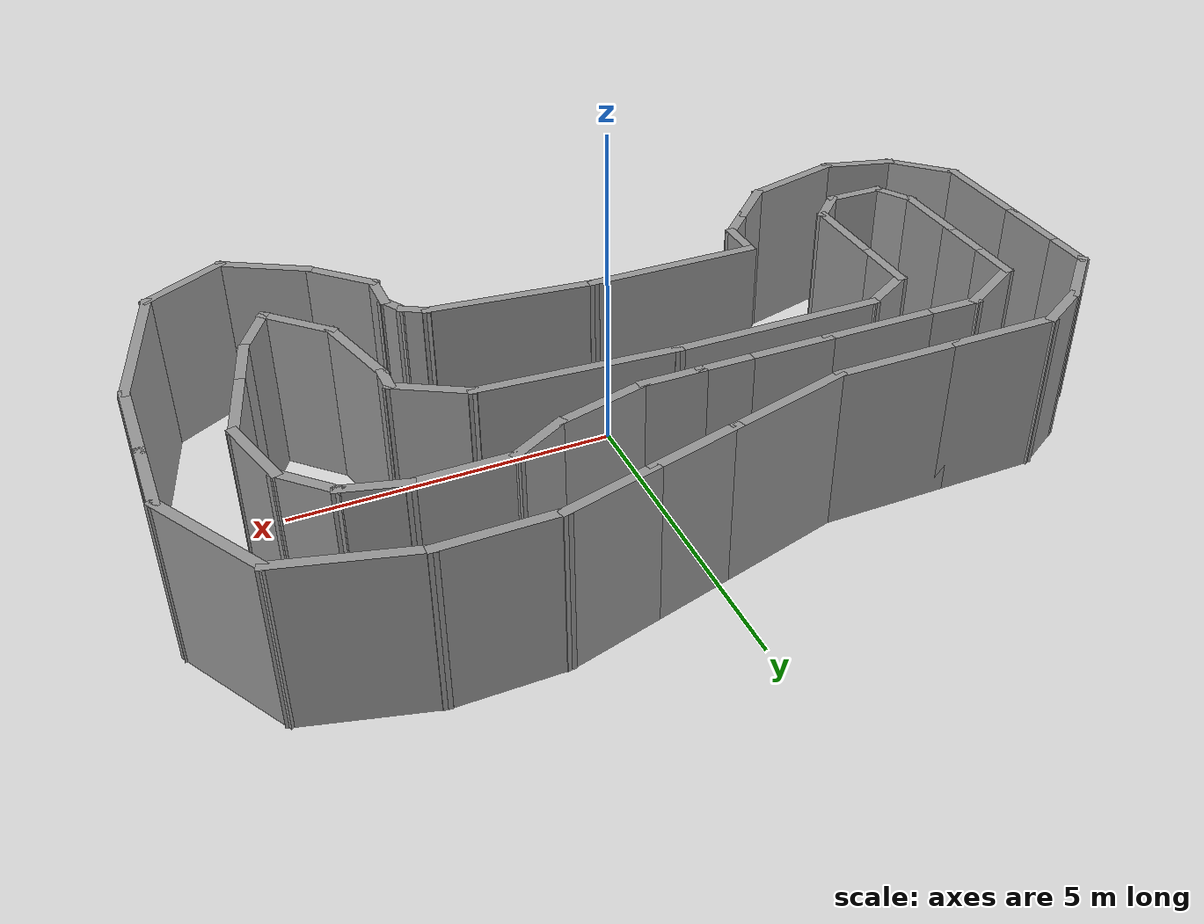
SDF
<?xml version='1.0'?>
<sdf version='1.7'>
  <model name='track1_f1'>
    <pose>-0.140454 0.494214 0 0 -0 0</pose>
    <link name='Wall_10'>
      <collision name='Wall_10_Collision'>
        <geometry>
          <box>
            <size>1.5 0.15 2.5</size>
          </box>
        </geometry>
        <pose>0 0 1.25 0 -0 0</pose>
      </collision>
      <visual name='Wall_10_Visual'>
        <pose>0 0 1.25 0 -0 0</pose>
        <geometry>
          <box>
            <size>1.5 0.15 2.5</size>
          </box>
        </geometry>
        <material>
          <script>
            <uri>file://media/materials/scripts/gazebo.material</uri>
            <name>Gazebo/Grey</name>
          </script>
          <ambient>1 1 1 1</ambient>
        </material>
        <meta>
          <layer>0</layer>
        </meta>
      </visual>
      <pose>-4.01844 -0.798864 0 0 -0 -1.5708</pose>
    </link>
    <link name='Wall_11'>
      <collision name='Wall_11_Collision'>
        <geometry>
          <box>
            <size>0.75 0.15 2.5</size>
          </box>
        </geometry>
        <pose>0 0 1.25 0 -0 0</pose>
      </collision>
      <visual name='Wall_11_Visual'>
        <pose>0 0 1.25 0 -0 0</pose>
        <geometry>
          <box>
            <size>0.75 0.15 2.5</size>
          </box>
        </geometry>
        <material>
          <script>
            <uri>file://media/materials/scripts/gazebo.material</uri>
            <name>Gazebo/Grey</name>
          </script>
          <ambient>1 1 1 1</ambient>
        </material>
        <meta>
          <layer>0</layer>
        </meta>
      </visual>
      <pose>-4.23057 -1.686 0 0 -0 -2.35619</pose>
    </link>
    <link name='Wall_12'>
      <collision name='Wall_12_Collision'>
        <geometry>
          <box>
            <size>1 0.15 2.5</size>
          </box>
        </geometry>
        <pose>0 0 1.25 0 -0 0</pose>
      </collision>
      <visual name='Wall_12_Visual'>
        <pose>0 0 1.25 0 -0 0</pose>
        <geometry>
          <box>
            <size>1 0.15 2.5</size>
          </box>
        </geometry>
        <material>
          <script>
            <uri>file://media/materials/scripts/gazebo.material</uri>
            <name>Gazebo/Grey</name>
          </script>
          <ambient>1 1 1 1</ambient>
        </material>
        <meta>
          <layer>0</layer>
        </meta>
      </visual>
      <pose>-4.86771 -1.89813 0 0 -0 3.14159</pose>
    </link>
    <link name='Wall_13'>
      <collision name='Wall_13_Collision'>
        <geometry>
          <box>
            <size>0.75 0.15 2.5</size>
          </box>
        </geometry>
        <pose>0 0 1.25 0 -0 0</pose>
      </collision>
      <visual name='Wall_13_Visual'>
        <pose>0 0 1.25 0 -0 0</pose>
        <geometry>
          <box>
            <size>0.75 0.15 2.5</size>
          </box>
        </geometry>
        <material>
          <script>
            <uri>file://media/materials/scripts/gazebo.material</uri>
            <name>Gazebo/Grey</name>
          </script>
          <ambient>1 1 1 1</ambient>
        </material>
        <meta>
          <layer>0</layer>
        </meta>
      </visual>
      <pose>-5.44271 -1.63832 0 0 -0 2.0944</pose>
    </link>
    <link name='Wall_14'>
      <collision name='Wall_14_Collision'>
        <geometry>
          <box>
            <size>1.25 0.15 2.5</size>
          </box>
        </geometry>
        <pose>0 0 1.25 0 -0 0</pose>
      </collision>
      <visual name='Wall_14_Visual'>
        <pose>0 0 1.25 0 -0 0</pose>
        <geometry>
          <box>
            <size>1.25 0.15 2.5</size>
          </box>
        </geometry>
        <material>
          <script>
            <uri>file://media/materials/scripts/gazebo.material</uri>
            <name>Gazebo/Grey</name>
          </script>
          <ambient>1 1 1 1</ambient>
        </material>
        <meta>
          <layer>0</layer>
        </meta>
      </visual>
      <pose>-5.59271 -0.828512 0 0 -0 1.5708</pose>
    </link>
    <link name='Wall_15'>
      <collision name='Wall_15_Collision'>
        <geometry>
          <box>
            <size>1 0.15 2.5</size>
          </box>
        </geometry>
        <pose>0 0 1.25 0 -0 0</pose>
      </collision>
      <visual name='Wall_15_Visual'>
        <pose>0 0 1.25 0 -0 0</pose>
        <geometry>
          <box>
            <size>1 0.15 2.5</size>
          </box>
        </geometry>
        <material>
          <script>
            <uri>file://media/materials/scripts/gazebo.material</uri>
            <name>Gazebo/Grey</name>
          </script>
          <ambient>1 1 1 1</ambient>
        </material>
        <meta>
          <layer>0</layer>
        </meta>
      </visual>
      <pose>-5.59271 0.146488 0 0 -0 1.5708</pose>
    </link>
    <link name='Wall_16'>
      <collision name='Wall_16_Collision'>
        <geometry>
          <box>
            <size>0.75 0.15 2.5</size>
          </box>
        </geometry>
        <pose>0 0 1.25 0 -0 0</pose>
      </collision>
      <visual name='Wall_16_Visual'>
        <pose>0 0 1.25 0 -0 0</pose>
        <geometry>
          <box>
            <size>0.75 0.15 2.5</size>
          </box>
        </geometry>
        <material>
          <script>
            <uri>file://media/materials/scripts/gazebo.material</uri>
            <name>Gazebo/Grey</name>
          </script>
          <ambient>1 1 1 1</ambient>
        </material>
        <meta>
          <layer>0</layer>
        </meta>
      </visual>
      <pose>-5.59271 0.871488 0 0 -0 1.5708</pose>
    </link>
    <link name='Wall_17'>
      <collision name='Wall_17_Collision'>
        <geometry>
          <box>
            <size>1.25 0.15 2.5</size>
          </box>
        </geometry>
        <pose>0 0 1.25 0 -0 0</pose>
      </collision>
      <visual name='Wall_17_Visual'>
        <pose>0 0 1.25 0 -0 0</pose>
        <geometry>
          <box>
            <size>1.25 0.15 2.5</size>
          </box>
        </geometry>
        <material>
          <script>
            <uri>file://media/materials/scripts/gazebo.material</uri>
            <name>Gazebo/Grey</name>
          </script>
          <ambient>1 1 1 1</ambient>
        </material>
        <meta>
          <layer>0</layer>
        </meta>
      </visual>
      <pose>-5.11639 1.44649 0 0 -0 0.523599</pose>
    </link>
    <link name='Wall_18'>
      <collision name='Wall_18_Collision'>
        <geometry>
          <box>
            <size>1 0.15 2.5</size>
          </box>
        </geometry>
        <pose>0 0 1.25 0 -0 0</pose>
      </collision>
      <visual name='Wall_18_Visual'>
        <pose>0 0 1.25 0 -0 0</pose>
        <geometry>
          <box>
            <size>1 0.15 2.5</size>
          </box>
        </geometry>
        <material>
          <script>
            <uri>file://media/materials/scripts/gazebo.material</uri>
            <name>Gazebo/Grey</name>
          </script>
          <ambient>1 1 1 1</ambient>
        </material>
        <meta>
          <layer>0</layer>
        </meta>
      </visual>
      <pose>-4.21508 1.72149 0 0 -0 0</pose>
    </link>
    <link name='Wall_19'>
      <collision name='Wall_19_Collision'>
        <geometry>
          <box>
            <size>1.75 0.15 2.5</size>
          </box>
        </geometry>
        <pose>0 0 1.25 0 -0 0</pose>
      </collision>
      <visual name='Wall_19_Visual'>
        <pose>0 0 1.25 0 -0 0</pose>
        <geometry>
          <box>
            <size>1.75 0.15 2.5</size>
          </box>
        </geometry>
        <material>
          <script>
            <uri>file://media/materials/scripts/gazebo.material</uri>
            <name>Gazebo/Grey</name>
          </script>
          <ambient>1 1 1 1</ambient>
        </material>
        <meta>
          <layer>0</layer>
        </meta>
      </visual>
      <pose>-2.99008 1.72149 0 0 -0 0</pose>
    </link>
    <link name='Wall_20'>
      <collision name='Wall_20_Collision'>
        <geometry>
          <box>
            <size>1.25 0.15 2.5</size>
          </box>
        </geometry>
        <pose>0 0 1.25 0 -0 0</pose>
      </collision>
      <visual name='Wall_20_Visual'>
        <pose>0 0 1.25 0 -0 0</pose>
        <geometry>
          <box>
            <size>1.25 0.15 2.5</size>
          </box>
        </geometry>
        <material>
          <script>
            <uri>file://media/materials/scripts/gazebo.material</uri>
            <name>Gazebo/Grey</name>
          </script>
          <ambient>1 1 1 1</ambient>
        </material>
        <meta>
          <layer>0</layer>
        </meta>
      </visual>
      <pose>-1.64008 1.72149 0 0 -0 0</pose>
    </link>
    <link name='Wall_21'>
      <collision name='Wall_21_Collision'>
        <geometry>
          <box>
            <size>1 0.15 2.5</size>
          </box>
        </geometry>
        <pose>0 0 1.25 0 -0 0</pose>
      </collision>
      <visual name='Wall_21_Visual'>
        <pose>0 0 1.25 0 -0 0</pose>
        <geometry>
          <box>
            <size>1 0.15 2.5</size>
          </box>
        </geometry>
        <material>
          <script>
            <uri>file://media/materials/scripts/gazebo.material</uri>
            <name>Gazebo/Grey</name>
          </script>
          <ambient>1 1 1 1</ambient>
        </material>
        <meta>
          <layer>0</layer>
        </meta>
      </visual>
      <pose>-0.665079 1.72149 0 0 -0 0</pose>
    </link>
    <link name='Wall_22'>
      <collision name='Wall_22_Collision'>
        <geometry>
          <box>
            <size>1 0.15 2.5</size>
          </box>
        </geometry>
        <pose>0 0 1.25 0 -0 0</pose>
      </collision>
      <visual name='Wall_22_Visual'>
        <pose>0 0 1.25 0 -0 0</pose>
        <geometry>
          <box>
            <size>1 0.15 2.5</size>
          </box>
        </geometry>
        <material>
          <script>
            <uri>file://media/materials/scripts/gazebo.material</uri>
            <name>Gazebo/Grey</name>
          </script>
          <ambient>1 1 1 1</ambient>
        </material>
        <meta>
          <layer>0</layer>
        </meta>
      </visual>
      <pose>0.184921 1.72149 0 0 -0 0</pose>
    </link>
    <link name='Wall_23'>
      <collision name='Wall_23_Collision'>
        <geometry>
          <box>
            <size>1.5 0.15 2.5</size>
          </box>
        </geometry>
        <pose>0 0 1.25 0 -0 0</pose>
      </collision>
      <visual name='Wall_23_Visual'>
        <pose>0 0 1.25 0 -0 0</pose>
        <geometry>
          <box>
            <size>1.5 0.15 2.5</size>
          </box>
        </geometry>
        <material>
          <script>
            <uri>file://media/materials/scripts/gazebo.material</uri>
            <name>Gazebo/Grey</name>
          </script>
          <ambient>1 1 1 1</ambient>
        </material>
        <meta>
          <layer>0</layer>
        </meta>
      </visual>
      <pose>1.26192 1.89619 0 0 -0 0.261799</pose>
    </link>
    <link name='Wall_24'>
      <collision name='Wall_24_Collision'>
        <geometry>
          <box>
            <size>1 0.15 2.5</size>
          </box>
        </geometry>
        <pose>0 0 1.25 0 -0 0</pose>
      </collision>
      <visual name='Wall_24_Visual'>
        <pose>0 0 1.25 0 -0 0</pose>
        <geometry>
          <box>
            <size>1 0.15 2.5</size>
          </box>
        </geometry>
        <material>
          <script>
            <uri>file://media/materials/scripts/gazebo.material</uri>
            <name>Gazebo/Grey</name>
          </script>
          <ambient>1 1 1 1</ambient>
        </material>
        <meta>
          <layer>0</layer>
        </meta>
      </visual>
      <pose>2.28198 2.28339 0 0 -0 0.523599</pose>
    </link>
    <link name='Wall_25'>
      <collision name='Wall_25_Collision'>
        <geometry>
          <box>
            <size>1.5 0.15 2.5</size>
          </box>
        </geometry>
        <pose>0 0 1.25 0 -0 0</pose>
      </collision>
      <visual name='Wall_25_Visual'>
        <pose>0 0 1.25 0 -0 0</pose>
        <geometry>
          <box>
            <size>1.5 0.15 2.5</size>
          </box>
        </geometry>
        <material>
          <script>
            <uri>file://media/materials/scripts/gazebo.material</uri>
            <name>Gazebo/Grey</name>
          </script>
          <ambient>1 1 1 1</ambient>
        </material>
        <meta>
          <layer>0</layer>
        </meta>
      </visual>
      <pose>3.32504 2.49589 0 0 -0 0</pose>
    </link>
    <link name='Wall_26'>
      <collision name='Wall_26_Collision'>
        <geometry>
          <box>
            <size>1 0.15 2.5</size>
          </box>
        </geometry>
        <pose>0 0 1.25 0 -0 0</pose>
      </collision>
      <visual name='Wall_26_Visual'>
        <pose>0 0 1.25 0 -0 0</pose>
        <geometry>
          <box>
            <size>1 0.15 2.5</size>
          </box>
        </geometry>
        <material>
          <script>
            <uri>file://media/materials/scripts/gazebo.material</uri>
            <name>Gazebo/Grey</name>
          </script>
          <ambient>1 1 1 1</ambient>
        </material>
        <meta>
          <layer>0</layer>
        </meta>
      </visual>
      <pose>4.41056 2.3859 0 0 -0 -0.261799</pose>
    </link>
    <link name='Wall_27'>
      <collision name='Wall_27_Collision'>
        <geometry>
          <box>
            <size>1 0.15 2.5</size>
          </box>
        </geometry>
        <pose>0 0 1.25 0 -0 0</pose>
      </collision>
      <visual name='Wall_27_Visual'>
        <pose>0 0 1.25 0 -0 0</pose>
        <geometry>
          <box>
            <size>1 0.15 2.5</size>
          </box>
        </geometry>
        <material>
          <script>
            <uri>file://media/materials/scripts/gazebo.material</uri>
            <name>Gazebo/Grey</name>
          </script>
          <ambient>1 1 1 1</ambient>
        </material>
        <meta>
          <layer>0</layer>
        </meta>
      </visual>
      <pose>5.1216 1.97538 0 0 -0 -0.785398</pose>
    </link>
    <link name='Wall_28'>
      <collision name='Wall_28_Collision'>
        <geometry>
          <box>
            <size>1.25 0.15 2.5</size>
          </box>
        </geometry>
        <pose>0 0 1.25 0 -0 0</pose>
      </collision>
      <visual name='Wall_28_Visual'>
        <pose>0 0 1.25 0 -0 0</pose>
        <geometry>
          <box>
            <size>1.25 0.15 2.5</size>
          </box>
        </geometry>
        <material>
          <script>
            <uri>file://media/materials/scripts/gazebo.material</uri>
            <name>Gazebo/Grey</name>
          </script>
          <ambient>1 1 1 1</ambient>
        </material>
        <meta>
          <layer>0</layer>
        </meta>
      </visual>
      <pose>5.56447 1.1436 0 0 -0 -1.309</pose>
    </link>
    <link name='Wall_29'>
      <collision name='Wall_29_Collision'>
        <geometry>
          <box>
            <size>1.25 0.15 2.5</size>
          </box>
        </geometry>
        <pose>0 0 1.25 0 -0 0</pose>
      </collision>
      <visual name='Wall_29_Visual'>
        <pose>0 0 1.25 0 -0 0</pose>
        <geometry>
          <box>
            <size>1.25 0.15 2.5</size>
          </box>
        </geometry>
        <material>
          <script>
            <uri>file://media/materials/scripts/gazebo.material</uri>
            <name>Gazebo/Grey</name>
          </script>
          <ambient>1 1 1 1</ambient>
        </material>
        <meta>
          <layer>0</layer>
        </meta>
      </visual>
      <pose>5.56447 0.081079 0 0 -0 -1.8326</pose>
    </link>
    <link name='Wall_30'>
      <collision name='Wall_30_Collision'>
        <geometry>
          <box>
            <size>1 0.15 2.5</size>
          </box>
        </geometry>
        <pose>0 0 1.25 0 -0 0</pose>
      </collision>
      <visual name='Wall_30_Visual'>
        <pose>0 0 1.25 0 -0 0</pose>
        <geometry>
          <box>
            <size>1 0.15 2.5</size>
          </box>
        </geometry>
        <material>
          <script>
            <uri>file://media/materials/scripts/gazebo.material</uri>
            <name>Gazebo/Grey</name>
          </script>
          <ambient>1 1 1 1</ambient>
        </material>
        <meta>
          <layer>0</layer>
        </meta>
      </visual>
      <pose>5.31212 -0.860699 0 0 -0 -1.8326</pose>
    </link>
    <link name='Wall_31'>
      <collision name='Wall_31_Collision'>
        <geometry>
          <box>
            <size>1 0.15 2.5</size>
          </box>
        </geometry>
        <pose>0 0 1.25 0 -0 0</pose>
      </collision>
      <visual name='Wall_31_Visual'>
        <pose>0 0 1.25 0 -0 0</pose>
        <geometry>
          <box>
            <size>1 0.15 2.5</size>
          </box>
        </geometry>
        <material>
          <script>
            <uri>file://media/materials/scripts/gazebo.material</uri>
            <name>Gazebo/Grey</name>
          </script>
          <ambient>1 1 1 1</ambient>
        </material>
        <meta>
          <layer>0</layer>
        </meta>
      </visual>
      <pose>4.98962 -1.63928 0 0 -0 -2.0944</pose>
    </link>
    <link name='Wall_32'>
      <collision name='Wall_32_Collision'>
        <geometry>
          <box>
            <size>1.25 0.15 2.5</size>
          </box>
        </geometry>
        <pose>0 0 1.25 0 -0 0</pose>
      </collision>
      <visual name='Wall_32_Visual'>
        <pose>0 0 1.25 0 -0 0</pose>
        <geometry>
          <box>
            <size>1.25 0.15 2.5</size>
          </box>
        </geometry>
        <material>
          <script>
            <uri>file://media/materials/scripts/gazebo.material</uri>
            <name>Gazebo/Grey</name>
          </script>
          <ambient>1 1 1 1</ambient>
        </material>
        <meta>
          <layer>0</layer>
        </meta>
      </visual>
      <pose>4.38822 -1.61843 0 0 -0 2.35619</pose>
    </link>
    <link name='Wall_33'>
      <collision name='Wall_33_Collision'>
        <geometry>
          <box>
            <size>1.5 0.15 2.5</size>
          </box>
        </geometry>
        <pose>0 0 1.25 0 -0 0</pose>
      </collision>
      <visual name='Wall_33_Visual'>
        <pose>0 0 1.25 0 -0 0</pose>
        <geometry>
          <box>
            <size>1.5 0.15 2.5</size>
          </box>
        </geometry>
        <material>
          <script>
            <uri>file://media/materials/scripts/gazebo.material</uri>
            <name>Gazebo/Grey</name>
          </script>
          <ambient>1 1 1 1</ambient>
        </material>
        <meta>
          <layer>0</layer>
        </meta>
      </visual>
      <pose>3.8246 -0.577522 0 0 -0 1.8326</pose>
    </link>
    <link name='Wall_36'>
      <collision name='Wall_36_Collision'>
        <geometry>
          <box>
            <size>0.5 0.15 2.5</size>
          </box>
        </geometry>
        <pose>0 0 1.25 0 -0 0</pose>
      </collision>
      <visual name='Wall_36_Visual'>
        <pose>0 0 1.25 0 -0 0</pose>
        <geometry>
          <box>
            <size>0.5 0.15 2.5</size>
          </box>
        </geometry>
        <material>
          <script>
            <uri>file://media/materials/scripts/gazebo.material</uri>
            <name>Gazebo/Grey</name>
          </script>
          <ambient>1 1 1 1</ambient>
        </material>
        <meta>
          <layer>0</layer>
        </meta>
      </visual>
      <pose>3.6499 0.249478 0 0 -0 1.5708</pose>
    </link>
    <link name='Wall_37'>
      <collision name='Wall_37_Collision'>
        <geometry>
          <box>
            <size>1.25 0.15 2.5</size>
          </box>
        </geometry>
        <pose>0 0 1.25 0 -0 0</pose>
      </collision>
      <visual name='Wall_37_Visual'>
        <pose>0 0 1.25 0 -0 0</pose>
        <geometry>
          <box>
            <size>1.25 0.15 2.5</size>
          </box>
        </geometry>
        <material>
          <script>
            <uri>file://media/materials/scripts/gazebo.material</uri>
            <name>Gazebo/Grey</name>
          </script>
          <ambient>1 1 1 1</ambient>
        </material>
        <meta>
          <layer>0</layer>
        </meta>
      </visual>
      <pose>3.17359 0.699478 0 0 -0 2.61799</pose>
    </link>
    <link name='Wall_44'>
      <collision name='Wall_44_Collision'>
        <geometry>
          <box>
            <size>2.75 0.15 2.5</size>
          </box>
        </geometry>
        <pose>0 0 1.25 0 -0 0</pose>
      </collision>
      <visual name='Wall_44_Visual'>
        <pose>0 0 1.25 0 -0 0</pose>
        <geometry>
          <box>
            <size>2.75 0.15 2.5</size>
          </box>
        </geometry>
        <material>
          <script>
            <uri>file://media/materials/scripts/gazebo.material</uri>
            <name>Gazebo/Grey</name>
          </script>
          <ambient>1 1 1 1</ambient>
        </material>
        <meta>
          <layer>0</layer>
        </meta>
      </visual>
      <pose>-1.1225 -0.960305 0 0 -0 3.14159</pose>
    </link>
    <link name='Wall_45'>
      <collision name='Wall_45_Collision'>
        <geometry>
          <box>
            <size>0.75 0.15 2.5</size>
          </box>
        </geometry>
        <pose>0 0 1.25 0 -0 0</pose>
      </collision>
      <visual name='Wall_45_Visual'>
        <pose>0 0 1.25 0 -0 0</pose>
        <geometry>
          <box>
            <size>0.75 0.15 2.5</size>
          </box>
        </geometry>
        <material>
          <script>
            <uri>file://media/materials/scripts/gazebo.material</uri>
            <name>Gazebo/Grey</name>
          </script>
          <ambient>1 1 1 1</ambient>
        </material>
        <meta>
          <layer>0</layer>
        </meta>
      </visual>
      <pose>-2.4225 -1.26031 0 0 -0 -1.5708</pose>
    </link>
    <link name='Wall_46'>
      <collision name='Wall_46_Collision'>
        <geometry>
          <box>
            <size>0.75 0.15 2.5</size>
          </box>
        </geometry>
        <pose>0 0 1.25 0 -0 0</pose>
      </collision>
      <visual name='Wall_46_Visual'>
        <pose>0 0 1.25 0 -0 0</pose>
        <geometry>
          <box>
            <size>0.75 0.15 2.5</size>
          </box>
        </geometry>
        <material>
          <script>
            <uri>file://media/materials/scripts/gazebo.material</uri>
            <name>Gazebo/Grey</name>
          </script>
          <ambient>1 1 1 1</ambient>
        </material>
        <meta>
          <layer>0</layer>
        </meta>
      </visual>
      <pose>-2.63463 -1.77244 0 0 -0 -2.35619</pose>
    </link>
    <link name='Wall_47'>
      <collision name='Wall_47_Collision'>
        <geometry>
          <box>
            <size>1 0.15 2.5</size>
          </box>
        </geometry>
        <pose>0 0 1.25 0 -0 0</pose>
      </collision>
      <visual name='Wall_47_Visual'>
        <pose>0 0 1.25 0 -0 0</pose>
        <geometry>
          <box>
            <size>1 0.15 2.5</size>
          </box>
        </geometry>
        <material>
          <script>
            <uri>file://media/materials/scripts/gazebo.material</uri>
            <name>Gazebo/Grey</name>
          </script>
          <ambient>1 1 1 1</ambient>
        </material>
        <meta>
          <layer>0</layer>
        </meta>
      </visual>
      <pose>-3.14729 -2.28509 0 0 -0 -2.35619</pose>
    </link>
    <link name='Wall_48'>
      <collision name='Wall_48_Collision'>
        <geometry>
          <box>
            <size>1.75 0.15 2.5</size>
          </box>
        </geometry>
        <pose>0 0 1.25 0 -0 0</pose>
      </collision>
      <visual name='Wall_48_Visual'>
        <pose>0 0 1.25 0 -0 0</pose>
        <geometry>
          <box>
            <size>1.75 0.15 2.5</size>
          </box>
        </geometry>
        <material>
          <script>
            <uri>file://media/materials/scripts/gazebo.material</uri>
            <name>Gazebo/Grey</name>
          </script>
          <ambient>1 1 1 1</ambient>
        </material>
        <meta>
          <layer>0</layer>
        </meta>
      </visual>
      <pose>-4.22055 -2.79266 0 0 -0 -2.87979</pose>
    </link>
    <link name='Wall_49'>
      <collision name='Wall_49_Collision'>
        <geometry>
          <box>
            <size>1.25 0.15 2.5</size>
          </box>
        </geometry>
        <pose>0 0 1.25 0 -0 0</pose>
      </collision>
      <visual name='Wall_49_Visual'>
        <pose>0 0 1.25 0 -0 0</pose>
        <geometry>
          <box>
            <size>1.25 0.15 2.5</size>
          </box>
        </geometry>
        <material>
          <script>
            <uri>file://media/materials/scripts/gazebo.material</uri>
            <name>Gazebo/Grey</name>
          </script>
          <ambient>1 1 1 1</ambient>
        </material>
        <meta>
          <layer>0</layer>
        </meta>
      </visual>
      <pose>-5.52455 -2.85737 0 0 -0 2.87979</pose>
    </link>
    <link name='Wall_50'>
      <collision name='Wall_50_Collision'>
        <geometry>
          <box>
            <size>1.25 0.15 2.5</size>
          </box>
        </geometry>
        <pose>0 0 1.25 0 -0 0</pose>
      </collision>
      <visual name='Wall_50_Visual'>
        <pose>0 0 1.25 0 -0 0</pose>
        <geometry>
          <box>
            <size>1.25 0.15 2.5</size>
          </box>
        </geometry>
        <material>
          <script>
            <uri>file://media/materials/scripts/gazebo.material</uri>
            <name>Gazebo/Grey</name>
          </script>
          <ambient>1 1 1 1</ambient>
        </material>
        <meta>
          <layer>0</layer>
        </meta>
      </visual>
      <pose>-6.44472 -2.32611 0 0 -0 2.35619</pose>
    </link>
    <link name='Wall_51'>
      <collision name='Wall_51_Collision'>
        <geometry>
          <box>
            <size>1.75 0.15 2.5</size>
          </box>
        </geometry>
        <pose>0 0 1.25 0 -0 0</pose>
      </collision>
      <visual name='Wall_51_Visual'>
        <pose>0 0 1.25 0 -0 0</pose>
        <geometry>
          <box>
            <size>1.75 0.15 2.5</size>
          </box>
        </geometry>
        <material>
          <script>
            <uri>file://media/materials/scripts/gazebo.material</uri>
            <name>Gazebo/Grey</name>
          </script>
          <ambient>1 1 1 1</ambient>
        </material>
        <meta>
          <layer>0</layer>
        </meta>
      </visual>
      <pose>-6.83362 -1.1372 0 0 -0 1.5708</pose>
    </link>
    <link name='Wall_52'>
      <collision name='Wall_52_Collision'>
        <geometry>
          <box>
            <size>1.25 0.15 2.5</size>
          </box>
        </geometry>
        <pose>0 0 1.25 0 -0 0</pose>
      </collision>
      <visual name='Wall_52_Visual'>
        <pose>0 0 1.25 0 -0 0</pose>
        <geometry>
          <box>
            <size>1.25 0.15 2.5</size>
          </box>
        </geometry>
        <material>
          <script>
            <uri>file://media/materials/scripts/gazebo.material</uri>
            <name>Gazebo/Grey</name>
          </script>
          <ambient>1 1 1 1</ambient>
        </material>
        <meta>
          <layer>0</layer>
        </meta>
      </visual>
      <pose>-6.83362 0.212798 0 0 -0 1.5708</pose>
    </link>
    <link name='Wall_53'>
      <collision name='Wall_53_Collision'>
        <geometry>
          <box>
            <size>0.75 0.15 2.5</size>
          </box>
        </geometry>
        <pose>0 0 1.25 0 -0 0</pose>
      </collision>
      <visual name='Wall_53_Visual'>
        <pose>0 0 1.25 0 -0 0</pose>
        <geometry>
          <box>
            <size>0.75 0.15 2.5</size>
          </box>
        </geometry>
        <material>
          <script>
            <uri>file://media/materials/scripts/gazebo.material</uri>
            <name>Gazebo/Grey</name>
          </script>
          <ambient>1 1 1 1</ambient>
        </material>
        <meta>
          <layer>0</layer>
        </meta>
      </visual>
      <pose>-6.83362 1.0628 0 0 -0 1.5708</pose>
    </link>
    <link name='Wall_54'>
      <collision name='Wall_54_Collision'>
        <geometry>
          <box>
            <size>1.25 0.15 2.5</size>
          </box>
        </geometry>
        <pose>0 0 1.25 0 -0 0</pose>
      </collision>
      <visual name='Wall_54_Visual'>
        <pose>0 0 1.25 0 -0 0</pose>
        <geometry>
          <box>
            <size>1.25 0.15 2.5</size>
          </box>
        </geometry>
        <material>
          <script>
            <uri>file://media/materials/scripts/gazebo.material</uri>
            <name>Gazebo/Grey</name>
          </script>
          <ambient>1 1 1 1</ambient>
        </material>
        <meta>
          <layer>0</layer>
        </meta>
      </visual>
      <pose>-6.44472 1.75171 0 0 -0 0.785398</pose>
    </link>
    <link name='Wall_55'>
      <collision name='Wall_55_Collision'>
        <geometry>
          <box>
            <size>1 0.15 2.5</size>
          </box>
        </geometry>
        <pose>0 0 1.25 0 -0 0</pose>
      </collision>
      <visual name='Wall_55_Visual'>
        <pose>0 0 1.25 0 -0 0</pose>
        <geometry>
          <box>
            <size>1 0.15 2.5</size>
          </box>
        </geometry>
        <material>
          <script>
            <uri>file://media/materials/scripts/gazebo.material</uri>
            <name>Gazebo/Grey</name>
          </script>
          <ambient>1 1 1 1</ambient>
        </material>
        <meta>
          <layer>0</layer>
        </meta>
      </visual>
      <pose>-5.68775 2.35311 0 0 -0 0.523599</pose>
    </link>
    <link name='Wall_56'>
      <collision name='Wall_56_Collision'>
        <geometry>
          <box>
            <size>1.75 0.15 2.5</size>
          </box>
        </geometry>
        <pose>0 0 1.25 0 -0 0</pose>
      </collision>
      <visual name='Wall_56_Visual'>
        <pose>0 0 1.25 0 -0 0</pose>
        <geometry>
          <box>
            <size>1.75 0.15 2.5</size>
          </box>
        </geometry>
        <material>
          <script>
            <uri>file://media/materials/scripts/gazebo.material</uri>
            <name>Gazebo/Grey</name>
          </script>
          <ambient>1 1 1 1</ambient>
        </material>
        <meta>
          <layer>0</layer>
        </meta>
      </visual>
      <pose>-4.51969 2.56562 0 0 -0 0</pose>
    </link>
    <link name='Wall_57'>
      <collision name='Wall_57_Collision'>
        <geometry>
          <box>
            <size>2 0.15 2.5</size>
          </box>
        </geometry>
        <pose>0 0 1.25 0 -0 0</pose>
      </collision>
      <visual name='Wall_57_Visual'>
        <pose>0 0 1.25 0 -0 0</pose>
        <geometry>
          <box>
            <size>2 0.15 2.5</size>
          </box>
        </geometry>
        <material>
          <script>
            <uri>file://media/materials/scripts/gazebo.material</uri>
            <name>Gazebo/Grey</name>
          </script>
          <ambient>1 1 1 1</ambient>
        </material>
        <meta>
          <layer>0</layer>
        </meta>
      </visual>
      <pose>-2.79469 2.56562 0 0 -0 0</pose>
    </link>
    <link name='Wall_58'>
      <collision name='Wall_58_Collision'>
        <geometry>
          <box>
            <size>2 0.15 2.5</size>
          </box>
        </geometry>
        <pose>0 0 1.25 0 -0 0</pose>
      </collision>
      <visual name='Wall_58_Visual'>
        <pose>0 0 1.25 0 -0 0</pose>
        <geometry>
          <box>
            <size>2 0.15 2.5</size>
          </box>
        </geometry>
        <material>
          <script>
            <uri>file://media/materials/scripts/gazebo.material</uri>
            <name>Gazebo/Grey</name>
          </script>
          <ambient>1 1 1 1</ambient>
        </material>
        <meta>
          <layer>0</layer>
        </meta>
      </visual>
      <pose>-0.976205 2.80502 0 0 -0 0.261799</pose>
    </link>
    <link name='Wall_59'>
      <collision name='Wall_59_Collision'>
        <geometry>
          <box>
            <size>1.5 0.15 2.5</size>
          </box>
        </geometry>
        <pose>0 0 1.25 0 -0 0</pose>
      </collision>
      <visual name='Wall_59_Visual'>
        <pose>0 0 1.25 0 -0 0</pose>
        <geometry>
          <box>
            <size>1.5 0.15 2.5</size>
          </box>
        </geometry>
        <material>
          <script>
            <uri>file://media/materials/scripts/gazebo.material</uri>
            <name>Gazebo/Grey</name>
          </script>
          <ambient>1 1 1 1</ambient>
        </material>
        <meta>
          <layer>0</layer>
        </meta>
      </visual>
      <pose>0.569277 3.21913 0 0 -0 0.261799</pose>
    </link>
    <link name='Wall_60'>
      <collision name='Wall_60_Collision'>
        <geometry>
          <box>
            <size>1.5 0.15 2.5</size>
          </box>
        </geometry>
        <pose>0 0 1.25 0 -0 0</pose>
      </collision>
      <visual name='Wall_60_Visual'>
        <pose>0 0 1.25 0 -0 0</pose>
        <geometry>
          <box>
            <size>1.5 0.15 2.5</size>
          </box>
        </geometry>
        <material>
          <script>
            <uri>file://media/materials/scripts/gazebo.material</uri>
            <name>Gazebo/Grey</name>
          </script>
          <ambient>1 1 1 1</ambient>
        </material>
        <meta>
          <layer>0</layer>
        </meta>
      </visual>
      <pose>1.87328 3.56854 0 0 -0 0.261799</pose>
    </link>
    <link name='Wall_61'>
      <collision name='Wall_61_Collision'>
        <geometry>
          <box>
            <size>1.75 0.15 2.5</size>
          </box>
        </geometry>
        <pose>0 0 1.25 0 -0 0</pose>
      </collision>
      <visual name='Wall_61_Visual'>
        <pose>0 0 1.25 0 -0 0</pose>
        <geometry>
          <box>
            <size>1.75 0.15 2.5</size>
          </box>
        </geometry>
        <material>
          <script>
            <uri>file://media/materials/scripts/gazebo.material</uri>
            <name>Gazebo/Grey</name>
          </script>
          <ambient>1 1 1 1</ambient>
        </material>
        <meta>
          <layer>0</layer>
        </meta>
      </visual>
      <pose>3.32528 3.74324 0 0 -0 0</pose>
    </link>
    <link name='Wall_62'>
      <collision name='Wall_62_Collision'>
        <geometry>
          <box>
            <size>2 0.15 2.5</size>
          </box>
        </geometry>
        <pose>0 0 1.25 0 -0 0</pose>
      </collision>
      <visual name='Wall_62_Visual'>
        <pose>0 0 1.25 0 -0 0</pose>
        <geometry>
          <box>
            <size>2 0.15 2.5</size>
          </box>
        </geometry>
        <material>
          <script>
            <uri>file://media/materials/scripts/gazebo.material</uri>
            <name>Gazebo/Grey</name>
          </script>
          <ambient>1 1 1 1</ambient>
        </material>
        <meta>
          <layer>0</layer>
        </meta>
      </visual>
      <pose>5.01876 3.50383 0 0 -0 -0.261799</pose>
    </link>
    <link name='Wall_63'>
      <collision name='Wall_63_Collision'>
        <geometry>
          <box>
            <size>2 0.15 2.5</size>
          </box>
        </geometry>
        <pose>0 0 1.25 0 -0 0</pose>
      </collision>
      <visual name='Wall_63_Visual'>
        <pose>0 0 1.25 0 -0 0</pose>
        <geometry>
          <box>
            <size>2 0.15 2.5</size>
          </box>
        </geometry>
        <material>
          <script>
            <uri>file://media/materials/scripts/gazebo.material</uri>
            <name>Gazebo/Grey</name>
          </script>
          <ambient>1 1 1 1</ambient>
        </material>
        <meta>
          <layer>0</layer>
        </meta>
      </visual>
      <pose>6.37474 2.46335 0 0 -0 -1.0472</pose>
    </link>
    <link name='Wall_64'>
      <collision name='Wall_64_Collision'>
        <geometry>
          <box>
            <size>1.25 0.15 2.5</size>
          </box>
        </geometry>
        <pose>0 0 1.25 0 -0 0</pose>
      </collision>
      <visual name='Wall_64_Visual'>
        <pose>0 0 1.25 0 -0 0</pose>
        <geometry>
          <box>
            <size>1.25 0.15 2.5</size>
          </box>
        </geometry>
        <material>
          <script>
            <uri>file://media/materials/scripts/gazebo.material</uri>
            <name>Gazebo/Grey</name>
          </script>
          <ambient>1 1 1 1</ambient>
        </material>
        <meta>
          <layer>0</layer>
        </meta>
      </visual>
      <pose>6.83724 1.11228 0 0 -0 -1.5708</pose>
    </link>
    <link name='Wall_65'>
      <collision name='Wall_65_Collision'>
        <geometry>
          <box>
            <size>1.5 0.15 2.5</size>
          </box>
        </geometry>
        <pose>0 0 1.25 0 -0 0</pose>
      </collision>
      <visual name='Wall_65_Visual'>
        <pose>0 0 1.25 0 -0 0</pose>
        <geometry>
          <box>
            <size>1.5 0.15 2.5</size>
          </box>
        </geometry>
        <material>
          <script>
            <uri>file://media/materials/scripts/gazebo.material</uri>
            <name>Gazebo/Grey</name>
          </script>
          <ambient>1 1 1 1</ambient>
        </material>
        <meta>
          <layer>0</layer>
        </meta>
      </visual>
      <pose>6.83724 -0.11272 0 0 -0 -1.5708</pose>
    </link>
    <link name='Wall_66'>
      <collision name='Wall_66_Collision'>
        <geometry>
          <box>
            <size>2.5 0.15 2.5</size>
          </box>
        </geometry>
        <pose>0 0 1.25 0 -0 0</pose>
      </collision>
      <visual name='Wall_66_Visual'>
        <pose>0 0 1.25 0 -0 0</pose>
        <geometry>
          <box>
            <size>2.5 0.15 2.5</size>
          </box>
        </geometry>
        <material>
          <script>
            <uri>file://media/materials/scripts/gazebo.material</uri>
            <name>Gazebo/Grey</name>
          </script>
          <ambient>1 1 1 1</ambient>
        </material>
        <meta>
          <layer>0</layer>
        </meta>
      </visual>
      <pose>6.53313 -1.92268 0 0 -0 -1.8326</pose>
    </link>
    <link name='Wall_67'>
      <collision name='Wall_67_Collision'>
        <geometry>
          <box>
            <size>1.5 0.15 2.5</size>
          </box>
        </geometry>
        <pose>0 0 1.25 0 -0 0</pose>
      </collision>
      <visual name='Wall_67_Visual'>
        <pose>0 0 1.25 0 -0 0</pose>
        <geometry>
          <box>
            <size>1.5 0.15 2.5</size>
          </box>
        </geometry>
        <material>
          <script>
            <uri>file://media/materials/scripts/gazebo.material</uri>
            <name>Gazebo/Grey</name>
          </script>
          <ambient>1 1 1 1</ambient>
        </material>
        <meta>
          <layer>0</layer>
        </meta>
      </visual>
      <pose>5.64445 -3.39515 0 0 -0 -2.61799</pose>
    </link>
    <link name='Wall_68'>
      <collision name='Wall_68_Collision'>
        <geometry>
          <box>
            <size>1.5 0.15 2.5</size>
          </box>
        </geometry>
        <pose>0 0 1.25 0 -0 0</pose>
      </collision>
      <visual name='Wall_68_Visual'>
        <pose>0 0 1.25 0 -0 0</pose>
        <geometry>
          <box>
            <size>1.5 0.15 2.5</size>
          </box>
        </geometry>
        <material>
          <script>
            <uri>file://media/materials/scripts/gazebo.material</uri>
            <name>Gazebo/Grey</name>
          </script>
          <ambient>1 1 1 1</ambient>
        </material>
        <meta>
          <layer>0</layer>
        </meta>
      </visual>
      <pose>4.47531 -3.39515 0 0 -0 2.61799</pose>
    </link>
    <link name='Wall_69'>
      <collision name='Wall_69_Collision'>
        <geometry>
          <box>
            <size>1.25 0.15 2.5</size>
          </box>
        </geometry>
        <pose>0 0 1.25 0 -0 0</pose>
      </collision>
      <visual name='Wall_69_Visual'>
        <pose>0 0 1.25 0 -0 0</pose>
        <geometry>
          <box>
            <size>1.25 0.15 2.5</size>
          </box>
        </geometry>
        <material>
          <script>
            <uri>file://media/materials/scripts/gazebo.material</uri>
            <name>Gazebo/Grey</name>
          </script>
          <ambient>1 1 1 1</ambient>
        </material>
        <meta>
          <layer>0</layer>
        </meta>
      </visual>
      <pose>3.50184 -2.66874 0 0 -0 2.35619</pose>
    </link>
    <link name='Wall_7'>
      <collision name='Wall_7_Collision'>
        <geometry>
          <box>
            <size>3.25 0.15 2.5</size>
          </box>
        </geometry>
        <pose>0 0 1.25 0 -0 0</pose>
      </collision>
      <visual name='Wall_7_Visual'>
        <pose>0 0 1.25 0 -0 0</pose>
        <geometry>
          <box>
            <size>3.25 0.15 2.5</size>
          </box>
        </geometry>
        <material>
          <script>
            <uri>file://media/materials/scripts/gazebo.material</uri>
            <name>Gazebo/Grey</name>
          </script>
          <ambient>1 1 1 1</ambient>
        </material>
        <meta>
          <layer>0</layer>
        </meta>
      </visual>
      <pose>-1.73232 1.15114 0 0 -0 3.14159</pose>
    </link>
    <link name='Wall_70'>
      <collision name='Wall_70_Collision'>
        <geometry>
          <box>
            <size>0.75 0.15 2.5</size>
          </box>
        </geometry>
        <pose>0 0 1.25 0 -0 0</pose>
      </collision>
      <visual name='Wall_70_Visual'>
        <pose>0 0 1.25 0 -0 0</pose>
        <geometry>
          <box>
            <size>0.75 0.15 2.5</size>
          </box>
        </geometry>
        <material>
          <script>
            <uri>file://media/materials/scripts/gazebo.material</uri>
            <name>Gazebo/Grey</name>
          </script>
          <ambient>1 1 1 1</ambient>
        </material>
        <meta>
          <layer>0</layer>
        </meta>
      </visual>
      <pose>3.11293 -1.97983 0 0 -0 1.5708</pose>
    </link>
    <link name='Wall_71'>
      <collision name='Wall_71_Collision'>
        <geometry>
          <box>
            <size>0.5 0.15 2.5</size>
          </box>
        </geometry>
        <pose>0 0 1.25 0 -0 0</pose>
      </collision>
      <visual name='Wall_71_Visual'>
        <pose>0 0 1.25 0 -0 0</pose>
        <geometry>
          <box>
            <size>0.5 0.15 2.5</size>
          </box>
        </geometry>
        <material>
          <script>
            <uri>file://media/materials/scripts/gazebo.material</uri>
            <name>Gazebo/Grey</name>
          </script>
          <ambient>1 1 1 1</ambient>
        </material>
        <meta>
          <layer>0</layer>
        </meta>
      </visual>
      <pose>3.02543 -1.52827 0 0 -0 2.0944</pose>
    </link>
    <link name='Wall_72'>
      <collision name='Wall_72_Collision'>
        <geometry>
          <box>
            <size>0.5 0.15 2.5</size>
          </box>
        </geometry>
        <pose>0 0 1.25 0 -0 0</pose>
      </collision>
      <visual name='Wall_72_Visual'>
        <pose>0 0 1.25 0 -0 0</pose>
        <geometry>
          <box>
            <size>0.5 0.15 2.5</size>
          </box>
        </geometry>
        <material>
          <script>
            <uri>file://media/materials/scripts/gazebo.material</uri>
            <name>Gazebo/Grey</name>
          </script>
          <ambient>1 1 1 1</ambient>
        </material>
        <meta>
          <layer>0</layer>
        </meta>
      </visual>
      <pose>2.78637 -1.28922 0 0 -0 2.61799</pose>
    </link>
    <link name='Wall_77'>
      <collision name='Wall_77_Collision'>
        <geometry>
          <box>
            <size>3.03501 0.15 2.5</size>
          </box>
        </geometry>
        <pose>0 0 1.25 0 -0 0</pose>
      </collision>
      <visual name='Wall_77_Visual'>
        <pose>0 0 1.25 0 -0 0</pose>
        <geometry>
          <box>
            <size>3.03501 0.15 2.5</size>
          </box>
        </geometry>
        <material>
          <script>
            <uri>file://media/materials/scripts/gazebo.material</uri>
            <name>Gazebo/Grey</name>
          </script>
          <ambient>1 1 1 1</ambient>
        </material>
        <meta>
          <layer>0</layer>
        </meta>
      </visual>
      <pose>1.25748 1.06281 0 0 -0 3.08032</pose>
    </link>
    <link name='Wall_79'>
      <collision name='Wall_79_Collision'>
        <geometry>
          <box>
            <size>2.61915 0.15 2.5</size>
          </box>
        </geometry>
        <pose>0 0 1.25 0 -0 0</pose>
      </collision>
      <visual name='Wall_79_Visual'>
        <pose>0 0 1.25 0 -0 0</pose>
        <geometry>
          <box>
            <size>2.61915 0.15 2.5</size>
          </box>
        </geometry>
        <material>
          <script>
            <uri>file://media/materials/scripts/gazebo.material</uri>
            <name>Gazebo/Grey</name>
          </script>
          <ambient>1 1 1 1</ambient>
        </material>
        <meta>
          <layer>0</layer>
        </meta>
      </visual>
      <pose>1.40616 -1.08101 0 0 -0 3.04366</pose>
    </link>
    <link name='Wall_8'>
      <collision name='Wall_8_Collision'>
        <geometry>
          <box>
            <size>1 0.15 2.5</size>
          </box>
        </geometry>
        <pose>0 0 1.25 0 -0 0</pose>
      </collision>
      <visual name='Wall_8_Visual'>
        <pose>0 0 1.25 0 -0 0</pose>
        <geometry>
          <box>
            <size>1 0.15 2.5</size>
          </box>
        </geometry>
        <material>
          <script>
            <uri>file://media/materials/scripts/gazebo.material</uri>
            <name>Gazebo/Grey</name>
          </script>
          <ambient>1 1 1 1</ambient>
        </material>
        <meta>
          <layer>0</layer>
        </meta>
      </visual>
      <pose>-3.65038 0.938636 0 0 -0 -2.61799</pose>
    </link>
    <link name='Wall_9'>
      <collision name='Wall_9_Collision'>
        <geometry>
          <box>
            <size>1 0.15 2.5</size>
          </box>
        </geometry>
        <pose>0 0 1.25 0 -0 0</pose>
      </collision>
      <visual name='Wall_9_Visual'>
        <pose>0 0 1.25 0 -0 0</pose>
        <geometry>
          <box>
            <size>1 0.15 2.5</size>
          </box>
        </geometry>
        <material>
          <script>
            <uri>file://media/materials/scripts/gazebo.material</uri>
            <name>Gazebo/Grey</name>
          </script>
          <ambient>1 1 1 1</ambient>
        </material>
        <meta>
          <layer>0</layer>
        </meta>
      </visual>
      <pose>-4.01844 0.301136 0 0 -0 -1.5708</pose>
    </link>
    <static>1</static>
  </model>
</sdf>
